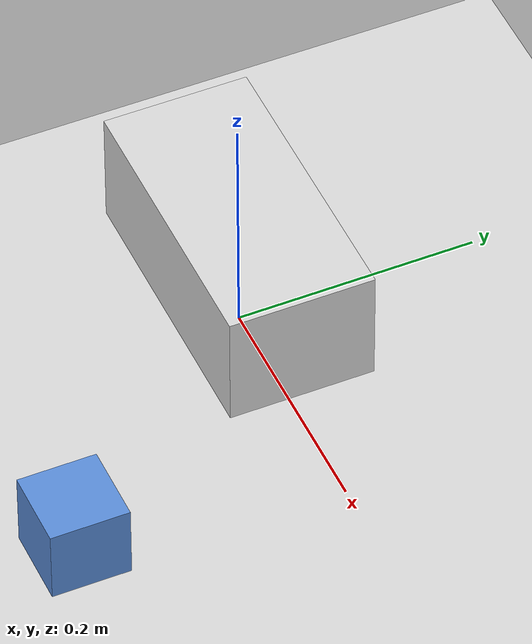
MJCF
<mujoco model="Sensors Demo">

  <compiler autolimits="true"/>
  <option timestep="0.005" gravity="0 0 -9.81"/>

  <visual>
    <headlight ambient="0.2 0.2 0.2" diffuse="0.6 0.6 0.6"/>
  </visual>

  <default>
    <default class="lab">
      <geom rgba="0.85 0.85 0.85 1" friction=".8 .02 .002"/>
      <joint damping="0.3"/>
      <default class="sensor-site">
        <site rgba="0.9 0.7 0.1 1" size="0.015" group="4"/>
      </default>
    </default>
  </default>

  <asset>
    <texture type="skybox" builtin="gradient" rgb1="0.35 0.45 0.55" rgb2="0.08 0.1 0.14"
             width="128" height="768"/>
    <texture type="2d" name="grid" builtin="checker" width="512" height="512"
             rgb1="0.18 0.2 0.22" rgb2="0.08 0.09 0.11" mark="cross" markrgb="0.7 0.7 0.7"/>
    <material name="grid" texture="grid" texrepeat="3 3" reflectance="0.15"/>
    <material name="cart" rgba="0.35 0.55 0.85 1" specular="0.4" shininess="0.6"/>
  </asset>

  <worldbody>
    <light name="key" pos="1.5 -1.5 2" dir="-1 1 -2" diffuse="0.9 0.85 0.8"
           specular="0.3 0.3 0.3" castshadow="true"/>

    <geom name="floor" type="plane" size="0 0 0.05" material="grid" class="lab"/>

    <!-- Rolling cart with sensor sites -->
    <body name="cart" pos="0 0 0.08" childclass="lab">
      <joint name="cart_x" type="slide" axis="1 0 0" range="-0.6 0.6"/>
      <geom name="cart_box" type="box" size="0.12 0.06 0.05" material="cart"/>
      <site name="imu" class="sensor-site" pos="0 0 0.06"/>
      <site name="rangefinder" class="sensor-site" pos="0 0 -0.05"/>
      <site name="touch_pad" class="sensor-site" type="box" size="0.1 0.05 0.005"
            pos="0 0 0.055" rgba="0.3 0.8 0.3 0.4"/>
    </body>

    <!-- Mocap teleop rig: drag the green target to teleport the free cube. -->
    <body name="target" mocap="true" pos="0.4 -0.3 0.3">
      <geom type="box" size="0.03 0.03 0.03" rgba="0.2 0.8 0.3 0.35"
            contype="0" conaffinity="0"/>
    </body>
    <body name="free_cube" pos="0.4 -0.3 0.3">
      <freejoint/>
      <geom name="free_cube_geom" type="box" size="0.03 0.03 0.03"
            material="cart" contype="0" conaffinity="0"/>
    </body>
  </worldbody>

  <equality>
    <connect body1="free_cube" body2="target" anchor="0 0 0"/>
  </equality>

  <actuator>
    <position name="cart_drive" joint="cart_x" ctrlrange="-0.6 0.6" kp="40"/>
  </actuator>

  <sensor>
    <rangefinder name="floor_dist" site="rangefinder"/>
    <gyro          name="gyro"    site="imu"/>
    <accelerometer name="accel"   site="imu"/>
    <velocimeter   name="linvel"  site="imu"/>
    <magnetometer  name="magnet"  site="imu"/>
    <jointpos name="cart_pos" joint="cart_x"/>
    <jointvel name="cart_vel" joint="cart_x"/>
    <touch name="cart_touch" site="touch_pad"/>
    <framepos    name="cube_pos"    objtype="body" objname="free_cube"/>
    <framequat   name="cube_quat"   objtype="body" objname="free_cube"/>
    <framelinvel name="cube_linvel" objtype="body" objname="free_cube"/>
    <frameangvel name="cube_angvel" objtype="body" objname="free_cube"/>
  </sensor>
</mujoco>
